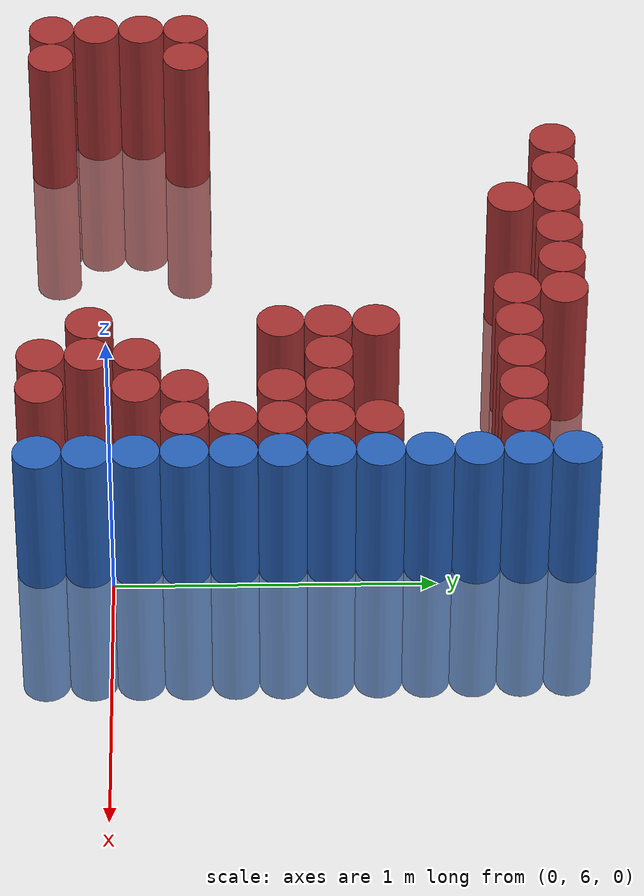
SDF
<sdf version="1.6">
 <world name="default">
  <model name="ground_plane">
   <static>1</static>
   <link name="link">
    <collision name="collision">
     <geometry><plane><normal>0 0 1</normal><size>100 100</size></plane></geometry>
     <surface><friction><ode><mu>100</mu><mu2>50</mu2></ode></friction></surface>
    </collision>
    <visual name="visual">
     <cast_shadows>0</cast_shadows>
     <geometry><plane><normal>0 0 1</normal><size>100 100</size></plane></geometry>
     <material>
      <script><uri>file://media/materials/scripts/gazebo.material</uri><name>Gazebo/Grey</name></script>
     </material>
    </visual>
   </link>
  </model>
  <model name="unit_cylinder_218">
   <static>1</static>
   <pose>-2.175000 5.775000 0.000000 0.000000 0.000000 0.000000</pose>
   <link name="link">
    <inertial>
     <mass>1</mass>
     <inertia><ixx>0.145833</ixx><ixy>0</ixy><ixz>0</ixz><iyy>0.145833</iyy><iyz>0</iyz><izz>0.125</izz></inertia>
    </inertial>
    <collision name="collision">
     <geometry><cylinder><radius>0.075000</radius><length>1</length></cylinder></geometry>
    </collision>
    <visual name="visual">
     <geometry><cylinder><radius>0.075000</radius><length>1</length></cylinder></geometry>
     <material>
      <ambient>0.648000 0.192000 0.192000 1</ambient>
      <diffuse>0.648000 0.192000 0.192000 1</diffuse>
     </material>
     <material>
      <script><name>Gazebo/Grey</name><uri>file://media/materials/scripts/gazebo.material</uri></script>
     </material>
    </visual>
   </link>
  </model>
  <model name="unit_cylinder_219">
   <static>1</static>
   <pose>-2.175000 5.925000 0.000000 0.000000 0.000000 0.000000</pose>
   <link name="link">
    <inertial>
     <mass>1</mass>
     <inertia><ixx>0.145833</ixx><ixy>0</ixy><ixz>0</ixz><iyy>0.145833</iyy><iyz>0</iyz><izz>0.125</izz></inertia>
    </inertial>
    <collision name="collision">
     <geometry><cylinder><radius>0.075000</radius><length>1</length></cylinder></geometry>
    </collision>
    <visual name="visual">
     <geometry><cylinder><radius>0.075000</radius><length>1</length></cylinder></geometry>
     <material>
      <ambient>0.648000 0.192000 0.192000 1</ambient>
      <diffuse>0.648000 0.192000 0.192000 1</diffuse>
     </material>
     <material>
      <script><name>Gazebo/Grey</name><uri>file://media/materials/scripts/gazebo.material</uri></script>
     </material>
    </visual>
   </link>
  </model>
  <model name="unit_cylinder_220">
   <static>1</static>
   <pose>-2.175000 6.075000 0.000000 0.000000 0.000000 0.000000</pose>
   <link name="link">
    <inertial>
     <mass>1</mass>
     <inertia><ixx>0.145833</ixx><ixy>0</ixy><ixz>0</ixz><iyy>0.145833</iyy><iyz>0</iyz><izz>0.125</izz></inertia>
    </inertial>
    <collision name="collision">
     <geometry><cylinder><radius>0.075000</radius><length>1</length></cylinder></geometry>
    </collision>
    <visual name="visual">
     <geometry><cylinder><radius>0.075000</radius><length>1</length></cylinder></geometry>
     <material>
      <ambient>0.648000 0.192000 0.192000 1</ambient>
      <diffuse>0.648000 0.192000 0.192000 1</diffuse>
     </material>
     <material>
      <script><name>Gazebo/Grey</name><uri>file://media/materials/scripts/gazebo.material</uri></script>
     </material>
    </visual>
   </link>
  </model>
  <model name="unit_cylinder_221">
   <static>1</static>
   <pose>-2.175000 6.225000 0.000000 0.000000 0.000000 0.000000</pose>
   <link name="link">
    <inertial>
     <mass>1</mass>
     <inertia><ixx>0.145833</ixx><ixy>0</ixy><ixz>0</ixz><iyy>0.145833</iyy><iyz>0</iyz><izz>0.125</izz></inertia>
    </inertial>
    <collision name="collision">
     <geometry><cylinder><radius>0.075000</radius><length>1</length></cylinder></geometry>
    </collision>
    <visual name="visual">
     <geometry><cylinder><radius>0.075000</radius><length>1</length></cylinder></geometry>
     <material>
      <ambient>0.648000 0.192000 0.192000 1</ambient>
      <diffuse>0.648000 0.192000 0.192000 1</diffuse>
     </material>
     <material>
      <script><name>Gazebo/Grey</name><uri>file://media/materials/scripts/gazebo.material</uri></script>
     </material>
    </visual>
   </link>
  </model>
  <model name="unit_cylinder_223">
   <static>1</static>
   <pose>-2.025000 5.775000 0.000000 0.000000 0.000000 0.000000</pose>
   <link name="link">
    <inertial>
     <mass>1</mass>
     <inertia><ixx>0.145833</ixx><ixy>0</ixy><ixz>0</ixz><iyy>0.145833</iyy><iyz>0</iyz><izz>0.125</izz></inertia>
    </inertial>
    <collision name="collision">
     <geometry><cylinder><radius>0.075000</radius><length>1</length></cylinder></geometry>
    </collision>
    <visual name="visual">
     <geometry><cylinder><radius>0.075000</radius><length>1</length></cylinder></geometry>
     <material>
      <ambient>0.648000 0.192000 0.192000 1</ambient>
      <diffuse>0.648000 0.192000 0.192000 1</diffuse>
     </material>
     <material>
      <script><name>Gazebo/Grey</name><uri>file://media/materials/scripts/gazebo.material</uri></script>
     </material>
    </visual>
   </link>
  </model>
  <model name="unit_cylinder_224">
   <static>1</static>
   <pose>-2.025000 6.225000 0.000000 0.000000 0.000000 0.000000</pose>
   <link name="link">
    <inertial>
     <mass>1</mass>
     <inertia><ixx>0.145833</ixx><ixy>0</ixy><ixz>0</ixz><iyy>0.145833</iyy><iyz>0</iyz><izz>0.125</izz></inertia>
    </inertial>
    <collision name="collision">
     <geometry><cylinder><radius>0.075000</radius><length>1</length></cylinder></geometry>
    </collision>
    <visual name="visual">
     <geometry><cylinder><radius>0.075000</radius><length>1</length></cylinder></geometry>
     <material>
      <ambient>0.648000 0.192000 0.192000 1</ambient>
      <diffuse>0.648000 0.192000 0.192000 1</diffuse>
     </material>
     <material>
      <script><name>Gazebo/Grey</name><uri>file://media/materials/scripts/gazebo.material</uri></script>
     </material>
    </visual>
   </link>
  </model>
  <model name="unit_cylinder_225">
   <static>1</static>
   <pose>-1.575000 7.425000 0.000000 0.000000 0.000000 0.000000</pose>
   <link name="link">
    <inertial>
     <mass>1</mass>
     <inertia><ixx>0.145833</ixx><ixy>0</ixy><ixz>0</ixz><iyy>0.145833</iyy><iyz>0</iyz><izz>0.125</izz></inertia>
    </inertial>
    <collision name="collision">
     <geometry><cylinder><radius>0.075000</radius><length>1</length></cylinder></geometry>
    </collision>
    <visual name="visual">
     <geometry><cylinder><radius>0.075000</radius><length>1</length></cylinder></geometry>
     <material>
      <ambient>0.648000 0.192000 0.192000 1</ambient>
      <diffuse>0.648000 0.192000 0.192000 1</diffuse>
     </material>
     <material>
      <script><name>Gazebo/Grey</name><uri>file://media/materials/scripts/gazebo.material</uri></script>
     </material>
    </visual>
   </link>
  </model>
  <model name="unit_cylinder_229">
   <static>1</static>
   <pose>-1.425000 7.425000 0.000000 0.000000 0.000000 0.000000</pose>
   <link name="link">
    <inertial>
     <mass>1</mass>
     <inertia><ixx>0.145833</ixx><ixy>0</ixy><ixz>0</ixz><iyy>0.145833</iyy><iyz>0</iyz><izz>0.125</izz></inertia>
    </inertial>
    <collision name="collision">
     <geometry><cylinder><radius>0.075000</radius><length>1</length></cylinder></geometry>
    </collision>
    <visual name="visual">
     <geometry><cylinder><radius>0.075000</radius><length>1</length></cylinder></geometry>
     <material>
      <ambient>0.648000 0.192000 0.192000 1</ambient>
      <diffuse>0.648000 0.192000 0.192000 1</diffuse>
     </material>
     <material>
      <script><name>Gazebo/Grey</name><uri>file://media/materials/scripts/gazebo.material</uri></script>
     </material>
    </visual>
   </link>
  </model>
  <model name="unit_cylinder_237">
   <static>1</static>
   <pose>-1.275000 7.275000 0.000000 0.000000 0.000000 0.000000</pose>
   <link name="link">
    <inertial>
     <mass>1</mass>
     <inertia><ixx>0.145833</ixx><ixy>0</ixy><ixz>0</ixz><iyy>0.145833</iyy><iyz>0</iyz><izz>0.125</izz></inertia>
    </inertial>
    <collision name="collision">
     <geometry><cylinder><radius>0.075000</radius><length>1</length></cylinder></geometry>
    </collision>
    <visual name="visual">
     <geometry><cylinder><radius>0.075000</radius><length>1</length></cylinder></geometry>
     <material>
      <ambient>0.648000 0.192000 0.192000 1</ambient>
      <diffuse>0.648000 0.192000 0.192000 1</diffuse>
     </material>
     <material>
      <script><name>Gazebo/Grey</name><uri>file://media/materials/scripts/gazebo.material</uri></script>
     </material>
    </visual>
   </link>
  </model>
  <model name="unit_cylinder_238">
   <static>1</static>
   <pose>-1.275000 7.425000 0.000000 0.000000 0.000000 0.000000</pose>
   <link name="link">
    <inertial>
     <mass>1</mass>
     <inertia><ixx>0.145833</ixx><ixy>0</ixy><ixz>0</ixz><iyy>0.145833</iyy><iyz>0</iyz><izz>0.125</izz></inertia>
    </inertial>
    <collision name="collision">
     <geometry><cylinder><radius>0.075000</radius><length>1</length></cylinder></geometry>
    </collision>
    <visual name="visual">
     <geometry><cylinder><radius>0.075000</radius><length>1</length></cylinder></geometry>
     <material>
      <ambient>0.648000 0.192000 0.192000 1</ambient>
      <diffuse>0.648000 0.192000 0.192000 1</diffuse>
     </material>
     <material>
      <script><name>Gazebo/Grey</name><uri>file://media/materials/scripts/gazebo.material</uri></script>
     </material>
    </visual>
   </link>
  </model>
  <model name="unit_cylinder_243">
   <static>1</static>
   <pose>-1.125000 7.425000 0.000000 0.000000 0.000000 0.000000</pose>
   <link name="link">
    <inertial>
     <mass>1</mass>
     <inertia><ixx>0.145833</ixx><ixy>0</ixy><ixz>0</ixz><iyy>0.145833</iyy><iyz>0</iyz><izz>0.125</izz></inertia>
    </inertial>
    <collision name="collision">
     <geometry><cylinder><radius>0.075000</radius><length>1</length></cylinder></geometry>
    </collision>
    <visual name="visual">
     <geometry><cylinder><radius>0.075000</radius><length>1</length></cylinder></geometry>
     <material>
      <ambient>0.648000 0.192000 0.192000 1</ambient>
      <diffuse>0.648000 0.192000 0.192000 1</diffuse>
     </material>
     <material>
      <script><name>Gazebo/Grey</name><uri>file://media/materials/scripts/gazebo.material</uri></script>
     </material>
    </visual>
   </link>
  </model>
  <model name="unit_cylinder_249">
   <static>1</static>
   <pose>-0.975000 7.425000 0.000000 0.000000 0.000000 0.000000</pose>
   <link name="link">
    <inertial>
     <mass>1</mass>
     <inertia><ixx>0.145833</ixx><ixy>0</ixy><ixz>0</ixz><iyy>0.145833</iyy><iyz>0</iyz><izz>0.125</izz></inertia>
    </inertial>
    <collision name="collision">
     <geometry><cylinder><radius>0.075000</radius><length>1</length></cylinder></geometry>
    </collision>
    <visual name="visual">
     <geometry><cylinder><radius>0.075000</radius><length>1</length></cylinder></geometry>
     <material>
      <ambient>0.648000 0.192000 0.192000 1</ambient>
      <diffuse>0.648000 0.192000 0.192000 1</diffuse>
     </material>
     <material>
      <script><name>Gazebo/Grey</name><uri>file://media/materials/scripts/gazebo.material</uri></script>
     </material>
    </visual>
   </link>
  </model>
  <model name="unit_cylinder_255">
   <static>1</static>
   <pose>-0.825000 7.275000 0.000000 0.000000 0.000000 0.000000</pose>
   <link name="link">
    <inertial>
     <mass>1</mass>
     <inertia><ixx>0.145833</ixx><ixy>0</ixy><ixz>0</ixz><iyy>0.145833</iyy><iyz>0</iyz><izz>0.125</izz></inertia>
    </inertial>
    <collision name="collision">
     <geometry><cylinder><radius>0.075000</radius><length>1</length></cylinder></geometry>
    </collision>
    <visual name="visual">
     <geometry><cylinder><radius>0.075000</radius><length>1</length></cylinder></geometry>
     <material>
      <ambient>0.648000 0.192000 0.192000 1</ambient>
      <diffuse>0.648000 0.192000 0.192000 1</diffuse>
     </material>
     <material>
      <script><name>Gazebo/Grey</name><uri>file://media/materials/scripts/gazebo.material</uri></script>
     </material>
    </visual>
   </link>
  </model>
  <model name="unit_cylinder_256">
   <static>1</static>
   <pose>-0.825000 7.425000 0.000000 0.000000 0.000000 0.000000</pose>
   <link name="link">
    <inertial>
     <mass>1</mass>
     <inertia><ixx>0.145833</ixx><ixy>0</ixy><ixz>0</ixz><iyy>0.145833</iyy><iyz>0</iyz><izz>0.125</izz></inertia>
    </inertial>
    <collision name="collision">
     <geometry><cylinder><radius>0.075000</radius><length>1</length></cylinder></geometry>
    </collision>
    <visual name="visual">
     <geometry><cylinder><radius>0.075000</radius><length>1</length></cylinder></geometry>
     <material>
      <ambient>0.648000 0.192000 0.192000 1</ambient>
      <diffuse>0.648000 0.192000 0.192000 1</diffuse>
     </material>
     <material>
      <script><name>Gazebo/Grey</name><uri>file://media/materials/scripts/gazebo.material</uri></script>
     </material>
    </visual>
   </link>
  </model>
  <model name="unit_cylinder_260">
   <static>1</static>
   <pose>-0.675000 5.925000 0.000000 0.000000 0.000000 0.000000</pose>
   <link name="link">
    <inertial>
     <mass>1</mass>
     <inertia><ixx>0.145833</ixx><ixy>0</ixy><ixz>0</ixz><iyy>0.145833</iyy><iyz>0</iyz><izz>0.125</izz></inertia>
    </inertial>
    <collision name="collision">
     <geometry><cylinder><radius>0.075000</radius><length>1</length></cylinder></geometry>
    </collision>
    <visual name="visual">
     <geometry><cylinder><radius>0.075000</radius><length>1</length></cylinder></geometry>
     <material>
      <ambient>0.648000 0.192000 0.192000 1</ambient>
      <diffuse>0.648000 0.192000 0.192000 1</diffuse>
     </material>
     <material>
      <script><name>Gazebo/Grey</name><uri>file://media/materials/scripts/gazebo.material</uri></script>
     </material>
    </visual>
   </link>
  </model>
  <model name="unit_cylinder_261">
   <static>1</static>
   <pose>-0.675000 6.525000 0.000000 0.000000 0.000000 0.000000</pose>
   <link name="link">
    <inertial>
     <mass>1</mass>
     <inertia><ixx>0.145833</ixx><ixy>0</ixy><ixz>0</ixz><iyy>0.145833</iyy><iyz>0</iyz><izz>0.125</izz></inertia>
    </inertial>
    <collision name="collision">
     <geometry><cylinder><radius>0.075000</radius><length>1</length></cylinder></geometry>
    </collision>
    <visual name="visual">
     <geometry><cylinder><radius>0.075000</radius><length>1</length></cylinder></geometry>
     <material>
      <ambient>0.648000 0.192000 0.192000 1</ambient>
      <diffuse>0.648000 0.192000 0.192000 1</diffuse>
     </material>
     <material>
      <script><name>Gazebo/Grey</name><uri>file://media/materials/scripts/gazebo.material</uri></script>
     </material>
    </visual>
   </link>
  </model>
  <model name="unit_cylinder_262">
   <static>1</static>
   <pose>-0.675000 6.675000 0.000000 0.000000 0.000000 0.000000</pose>
   <link name="link">
    <inertial>
     <mass>1</mass>
     <inertia><ixx>0.145833</ixx><ixy>0</ixy><ixz>0</ixz><iyy>0.145833</iyy><iyz>0</iyz><izz>0.125</izz></inertia>
    </inertial>
    <collision name="collision">
     <geometry><cylinder><radius>0.075000</radius><length>1</length></cylinder></geometry>
    </collision>
    <visual name="visual">
     <geometry><cylinder><radius>0.075000</radius><length>1</length></cylinder></geometry>
     <material>
      <ambient>0.648000 0.192000 0.192000 1</ambient>
      <diffuse>0.648000 0.192000 0.192000 1</diffuse>
     </material>
     <material>
      <script><name>Gazebo/Grey</name><uri>file://media/materials/scripts/gazebo.material</uri></script>
     </material>
    </visual>
   </link>
  </model>
  <model name="unit_cylinder_263">
   <static>1</static>
   <pose>-0.675000 6.825000 0.000000 0.000000 0.000000 0.000000</pose>
   <link name="link">
    <inertial>
     <mass>1</mass>
     <inertia><ixx>0.145833</ixx><ixy>0</ixy><ixz>0</ixz><iyy>0.145833</iyy><iyz>0</iyz><izz>0.125</izz></inertia>
    </inertial>
    <collision name="collision">
     <geometry><cylinder><radius>0.075000</radius><length>1</length></cylinder></geometry>
    </collision>
    <visual name="visual">
     <geometry><cylinder><radius>0.075000</radius><length>1</length></cylinder></geometry>
     <material>
      <ambient>0.648000 0.192000 0.192000 1</ambient>
      <diffuse>0.648000 0.192000 0.192000 1</diffuse>
     </material>
     <material>
      <script><name>Gazebo/Grey</name><uri>file://media/materials/scripts/gazebo.material</uri></script>
     </material>
    </visual>
   </link>
  </model>
  <model name="unit_cylinder_264">
   <static>1</static>
   <pose>-0.675000 7.275000 0.000000 0.000000 0.000000 0.000000</pose>
   <link name="link">
    <inertial>
     <mass>1</mass>
     <inertia><ixx>0.145833</ixx><ixy>0</ixy><ixz>0</ixz><iyy>0.145833</iyy><iyz>0</iyz><izz>0.125</izz></inertia>
    </inertial>
    <collision name="collision">
     <geometry><cylinder><radius>0.075000</radius><length>1</length></cylinder></geometry>
    </collision>
    <visual name="visual">
     <geometry><cylinder><radius>0.075000</radius><length>1</length></cylinder></geometry>
     <material>
      <ambient>0.648000 0.192000 0.192000 1</ambient>
      <diffuse>0.648000 0.192000 0.192000 1</diffuse>
     </material>
     <material>
      <script><name>Gazebo/Grey</name><uri>file://media/materials/scripts/gazebo.material</uri></script>
     </material>
    </visual>
   </link>
  </model>
  <model name="unit_cylinder_266">
   <static>1</static>
   <pose>-0.525000 5.775000 0.000000 0.000000 0.000000 0.000000</pose>
   <link name="link">
    <inertial>
     <mass>1</mass>
     <inertia><ixx>0.145833</ixx><ixy>0</ixy><ixz>0</ixz><iyy>0.145833</iyy><iyz>0</iyz><izz>0.125</izz></inertia>
    </inertial>
    <collision name="collision">
     <geometry><cylinder><radius>0.075000</radius><length>1</length></cylinder></geometry>
    </collision>
    <visual name="visual">
     <geometry><cylinder><radius>0.075000</radius><length>1</length></cylinder></geometry>
     <material>
      <ambient>0.648000 0.192000 0.192000 1</ambient>
      <diffuse>0.648000 0.192000 0.192000 1</diffuse>
     </material>
     <material>
      <script><name>Gazebo/Grey</name><uri>file://media/materials/scripts/gazebo.material</uri></script>
     </material>
    </visual>
   </link>
  </model>
  <model name="unit_cylinder_267">
   <static>1</static>
   <pose>-0.525000 5.925000 0.000000 0.000000 0.000000 0.000000</pose>
   <link name="link">
    <inertial>
     <mass>1</mass>
     <inertia><ixx>0.145833</ixx><ixy>0</ixy><ixz>0</ixz><iyy>0.145833</iyy><iyz>0</iyz><izz>0.125</izz></inertia>
    </inertial>
    <collision name="collision">
     <geometry><cylinder><radius>0.075000</radius><length>1</length></cylinder></geometry>
    </collision>
    <visual name="visual">
     <geometry><cylinder><radius>0.075000</radius><length>1</length></cylinder></geometry>
     <material>
      <ambient>0.648000 0.192000 0.192000 1</ambient>
      <diffuse>0.648000 0.192000 0.192000 1</diffuse>
     </material>
     <material>
      <script><name>Gazebo/Grey</name><uri>file://media/materials/scripts/gazebo.material</uri></script>
     </material>
    </visual>
   </link>
  </model>
  <model name="unit_cylinder_268">
   <static>1</static>
   <pose>-0.525000 6.075000 0.000000 0.000000 0.000000 0.000000</pose>
   <link name="link">
    <inertial>
     <mass>1</mass>
     <inertia><ixx>0.145833</ixx><ixy>0</ixy><ixz>0</ixz><iyy>0.145833</iyy><iyz>0</iyz><izz>0.125</izz></inertia>
    </inertial>
    <collision name="collision">
     <geometry><cylinder><radius>0.075000</radius><length>1</length></cylinder></geometry>
    </collision>
    <visual name="visual">
     <geometry><cylinder><radius>0.075000</radius><length>1</length></cylinder></geometry>
     <material>
      <ambient>0.648000 0.192000 0.192000 1</ambient>
      <diffuse>0.648000 0.192000 0.192000 1</diffuse>
     </material>
     <material>
      <script><name>Gazebo/Grey</name><uri>file://media/materials/scripts/gazebo.material</uri></script>
     </material>
    </visual>
   </link>
  </model>
  <model name="unit_cylinder_269">
   <static>1</static>
   <pose>-0.525000 6.675000 0.000000 0.000000 0.000000 0.000000</pose>
   <link name="link">
    <inertial>
     <mass>1</mass>
     <inertia><ixx>0.145833</ixx><ixy>0</ixy><ixz>0</ixz><iyy>0.145833</iyy><iyz>0</iyz><izz>0.125</izz></inertia>
    </inertial>
    <collision name="collision">
     <geometry><cylinder><radius>0.075000</radius><length>1</length></cylinder></geometry>
    </collision>
    <visual name="visual">
     <geometry><cylinder><radius>0.075000</radius><length>1</length></cylinder></geometry>
     <material>
      <ambient>0.648000 0.192000 0.192000 1</ambient>
      <diffuse>0.648000 0.192000 0.192000 1</diffuse>
     </material>
     <material>
      <script><name>Gazebo/Grey</name><uri>file://media/materials/scripts/gazebo.material</uri></script>
     </material>
    </visual>
   </link>
  </model>
  <model name="unit_cylinder_270">
   <static>1</static>
   <pose>-0.525000 7.275000 0.000000 0.000000 0.000000 0.000000</pose>
   <link name="link">
    <inertial>
     <mass>1</mass>
     <inertia><ixx>0.145833</ixx><ixy>0</ixy><ixz>0</ixz><iyy>0.145833</iyy><iyz>0</iyz><izz>0.125</izz></inertia>
    </inertial>
    <collision name="collision">
     <geometry><cylinder><radius>0.075000</radius><length>1</length></cylinder></geometry>
    </collision>
    <visual name="visual">
     <geometry><cylinder><radius>0.075000</radius><length>1</length></cylinder></geometry>
     <material>
      <ambient>0.648000 0.192000 0.192000 1</ambient>
      <diffuse>0.648000 0.192000 0.192000 1</diffuse>
     </material>
     <material>
      <script><name>Gazebo/Grey</name><uri>file://media/materials/scripts/gazebo.material</uri></script>
     </material>
    </visual>
   </link>
  </model>
  <model name="unit_cylinder_275">
   <static>1</static>
   <pose>-0.375000 5.775000 0.000000 0.000000 0.000000 0.000000</pose>
   <link name="link">
    <inertial>
     <mass>1</mass>
     <inertia><ixx>0.145833</ixx><ixy>0</ixy><ixz>0</ixz><iyy>0.145833</iyy><iyz>0</iyz><izz>0.125</izz></inertia>
    </inertial>
    <collision name="collision">
     <geometry><cylinder><radius>0.075000</radius><length>1</length></cylinder></geometry>
    </collision>
    <visual name="visual">
     <geometry><cylinder><radius>0.075000</radius><length>1</length></cylinder></geometry>
     <material>
      <ambient>0.648000 0.192000 0.192000 1</ambient>
      <diffuse>0.648000 0.192000 0.192000 1</diffuse>
     </material>
     <material>
      <script><name>Gazebo/Grey</name><uri>file://media/materials/scripts/gazebo.material</uri></script>
     </material>
    </visual>
   </link>
  </model>
  <model name="unit_cylinder_276">
   <static>1</static>
   <pose>-0.375000 6.075000 0.000000 0.000000 0.000000 0.000000</pose>
   <link name="link">
    <inertial>
     <mass>1</mass>
     <inertia><ixx>0.145833</ixx><ixy>0</ixy><ixz>0</ixz><iyy>0.145833</iyy><iyz>0</iyz><izz>0.125</izz></inertia>
    </inertial>
    <collision name="collision">
     <geometry><cylinder><radius>0.075000</radius><length>1</length></cylinder></geometry>
    </collision>
    <visual name="visual">
     <geometry><cylinder><radius>0.075000</radius><length>1</length></cylinder></geometry>
     <material>
      <ambient>0.648000 0.192000 0.192000 1</ambient>
      <diffuse>0.648000 0.192000 0.192000 1</diffuse>
     </material>
     <material>
      <script><name>Gazebo/Grey</name><uri>file://media/materials/scripts/gazebo.material</uri></script>
     </material>
    </visual>
   </link>
  </model>
  <model name="unit_cylinder_277">
   <static>1</static>
   <pose>-0.375000 6.225000 0.000000 0.000000 0.000000 0.000000</pose>
   <link name="link">
    <inertial>
     <mass>1</mass>
     <inertia><ixx>0.145833</ixx><ixy>0</ixy><ixz>0</ixz><iyy>0.145833</iyy><iyz>0</iyz><izz>0.125</izz></inertia>
    </inertial>
    <collision name="collision">
     <geometry><cylinder><radius>0.075000</radius><length>1</length></cylinder></geometry>
    </collision>
    <visual name="visual">
     <geometry><cylinder><radius>0.075000</radius><length>1</length></cylinder></geometry>
     <material>
      <ambient>0.648000 0.192000 0.192000 1</ambient>
      <diffuse>0.648000 0.192000 0.192000 1</diffuse>
     </material>
     <material>
      <script><name>Gazebo/Grey</name><uri>file://media/materials/scripts/gazebo.material</uri></script>
     </material>
    </visual>
   </link>
  </model>
  <model name="unit_cylinder_278">
   <static>1</static>
   <pose>-0.375000 6.525000 0.000000 0.000000 0.000000 0.000000</pose>
   <link name="link">
    <inertial>
     <mass>1</mass>
     <inertia><ixx>0.145833</ixx><ixy>0</ixy><ixz>0</ixz><iyy>0.145833</iyy><iyz>0</iyz><izz>0.125</izz></inertia>
    </inertial>
    <collision name="collision">
     <geometry><cylinder><radius>0.075000</radius><length>1</length></cylinder></geometry>
    </collision>
    <visual name="visual">
     <geometry><cylinder><radius>0.075000</radius><length>1</length></cylinder></geometry>
     <material>
      <ambient>0.648000 0.192000 0.192000 1</ambient>
      <diffuse>0.648000 0.192000 0.192000 1</diffuse>
     </material>
     <material>
      <script><name>Gazebo/Grey</name><uri>file://media/materials/scripts/gazebo.material</uri></script>
     </material>
    </visual>
   </link>
  </model>
  <model name="unit_cylinder_279">
   <static>1</static>
   <pose>-0.375000 6.675000 0.000000 0.000000 0.000000 0.000000</pose>
   <link name="link">
    <inertial>
     <mass>1</mass>
     <inertia><ixx>0.145833</ixx><ixy>0</ixy><ixz>0</ixz><iyy>0.145833</iyy><iyz>0</iyz><izz>0.125</izz></inertia>
    </inertial>
    <collision name="collision">
     <geometry><cylinder><radius>0.075000</radius><length>1</length></cylinder></geometry>
    </collision>
    <visual name="visual">
     <geometry><cylinder><radius>0.075000</radius><length>1</length></cylinder></geometry>
     <material>
      <ambient>0.648000 0.192000 0.192000 1</ambient>
      <diffuse>0.648000 0.192000 0.192000 1</diffuse>
     </material>
     <material>
      <script><name>Gazebo/Grey</name><uri>file://media/materials/scripts/gazebo.material</uri></script>
     </material>
    </visual>
   </link>
  </model>
  <model name="unit_cylinder_280">
   <static>1</static>
   <pose>-0.375000 7.275000 0.000000 0.000000 0.000000 0.000000</pose>
   <link name="link">
    <inertial>
     <mass>1</mass>
     <inertia><ixx>0.145833</ixx><ixy>0</ixy><ixz>0</ixz><iyy>0.145833</iyy><iyz>0</iyz><izz>0.125</izz></inertia>
    </inertial>
    <collision name="collision">
     <geometry><cylinder><radius>0.075000</radius><length>1</length></cylinder></geometry>
    </collision>
    <visual name="visual">
     <geometry><cylinder><radius>0.075000</radius><length>1</length></cylinder></geometry>
     <material>
      <ambient>0.648000 0.192000 0.192000 1</ambient>
      <diffuse>0.648000 0.192000 0.192000 1</diffuse>
     </material>
     <material>
      <script><name>Gazebo/Grey</name><uri>file://media/materials/scripts/gazebo.material</uri></script>
     </material>
    </visual>
   </link>
  </model>
  <model name="unit_cylinder_289">
   <static>1</static>
   <pose>-0.225000 6.225000 0.000000 0.000000 0.000000 0.000000</pose>
   <link name="link">
    <inertial>
     <mass>1</mass>
     <inertia><ixx>0.145833</ixx><ixy>0</ixy><ixz>0</ixz><iyy>0.145833</iyy><iyz>0</iyz><izz>0.125</izz></inertia>
    </inertial>
    <collision name="collision">
     <geometry><cylinder><radius>0.075000</radius><length>1</length></cylinder></geometry>
    </collision>
    <visual name="visual">
     <geometry><cylinder><radius>0.075000</radius><length>1</length></cylinder></geometry>
     <material>
      <ambient>0.648000 0.192000 0.192000 1</ambient>
      <diffuse>0.648000 0.192000 0.192000 1</diffuse>
     </material>
     <material>
      <script><name>Gazebo/Grey</name><uri>file://media/materials/scripts/gazebo.material</uri></script>
     </material>
    </visual>
   </link>
  </model>
  <model name="unit_cylinder_290">
   <static>1</static>
   <pose>-0.225000 6.375000 0.000000 0.000000 0.000000 0.000000</pose>
   <link name="link">
    <inertial>
     <mass>1</mass>
     <inertia><ixx>0.145833</ixx><ixy>0</ixy><ixz>0</ixz><iyy>0.145833</iyy><iyz>0</iyz><izz>0.125</izz></inertia>
    </inertial>
    <collision name="collision">
     <geometry><cylinder><radius>0.075000</radius><length>1</length></cylinder></geometry>
    </collision>
    <visual name="visual">
     <geometry><cylinder><radius>0.075000</radius><length>1</length></cylinder></geometry>
     <material>
      <ambient>0.648000 0.192000 0.192000 1</ambient>
      <diffuse>0.648000 0.192000 0.192000 1</diffuse>
     </material>
     <material>
      <script><name>Gazebo/Grey</name><uri>file://media/materials/scripts/gazebo.material</uri></script>
     </material>
    </visual>
   </link>
  </model>
  <model name="unit_cylinder_291">
   <static>1</static>
   <pose>-0.225000 6.525000 0.000000 0.000000 0.000000 0.000000</pose>
   <link name="link">
    <inertial>
     <mass>1</mass>
     <inertia><ixx>0.145833</ixx><ixy>0</ixy><ixz>0</ixz><iyy>0.145833</iyy><iyz>0</iyz><izz>0.125</izz></inertia>
    </inertial>
    <collision name="collision">
     <geometry><cylinder><radius>0.075000</radius><length>1</length></cylinder></geometry>
    </collision>
    <visual name="visual">
     <geometry><cylinder><radius>0.075000</radius><length>1</length></cylinder></geometry>
     <material>
      <ambient>0.648000 0.192000 0.192000 1</ambient>
      <diffuse>0.648000 0.192000 0.192000 1</diffuse>
     </material>
     <material>
      <script><name>Gazebo/Grey</name><uri>file://media/materials/scripts/gazebo.material</uri></script>
     </material>
    </visual>
   </link>
  </model>
  <model name="unit_cylinder_292">
   <static>1</static>
   <pose>-0.225000 6.675000 0.000000 0.000000 0.000000 0.000000</pose>
   <link name="link">
    <inertial>
     <mass>1</mass>
     <inertia><ixx>0.145833</ixx><ixy>0</ixy><ixz>0</ixz><iyy>0.145833</iyy><iyz>0</iyz><izz>0.125</izz></inertia>
    </inertial>
    <collision name="collision">
     <geometry><cylinder><radius>0.075000</radius><length>1</length></cylinder></geometry>
    </collision>
    <visual name="visual">
     <geometry><cylinder><radius>0.075000</radius><length>1</length></cylinder></geometry>
     <material>
      <ambient>0.648000 0.192000 0.192000 1</ambient>
      <diffuse>0.648000 0.192000 0.192000 1</diffuse>
     </material>
     <material>
      <script><name>Gazebo/Grey</name><uri>file://media/materials/scripts/gazebo.material</uri></script>
     </material>
    </visual>
   </link>
  </model>
  <model name="unit_cylinder_293">
   <static>1</static>
   <pose>-0.225000 6.825000 0.000000 0.000000 0.000000 0.000000</pose>
   <link name="link">
    <inertial>
     <mass>1</mass>
     <inertia><ixx>0.145833</ixx><ixy>0</ixy><ixz>0</ixz><iyy>0.145833</iyy><iyz>0</iyz><izz>0.125</izz></inertia>
    </inertial>
    <collision name="collision">
     <geometry><cylinder><radius>0.075000</radius><length>1</length></cylinder></geometry>
    </collision>
    <visual name="visual">
     <geometry><cylinder><radius>0.075000</radius><length>1</length></cylinder></geometry>
     <material>
      <ambient>0.648000 0.192000 0.192000 1</ambient>
      <diffuse>0.648000 0.192000 0.192000 1</diffuse>
     </material>
     <material>
      <script><name>Gazebo/Grey</name><uri>file://media/materials/scripts/gazebo.material</uri></script>
     </material>
    </visual>
   </link>
  </model>
  <model name="unit_cylinder_294">
   <static>1</static>
   <pose>-0.225000 7.275000 0.000000 0.000000 0.000000 0.000000</pose>
   <link name="link">
    <inertial>
     <mass>1</mass>
     <inertia><ixx>0.145833</ixx><ixy>0</ixy><ixz>0</ixz><iyy>0.145833</iyy><iyz>0</iyz><izz>0.125</izz></inertia>
    </inertial>
    <collision name="collision">
     <geometry><cylinder><radius>0.075000</radius><length>1</length></cylinder></geometry>
    </collision>
    <visual name="visual">
     <geometry><cylinder><radius>0.075000</radius><length>1</length></cylinder></geometry>
     <material>
      <ambient>0.648000 0.192000 0.192000 1</ambient>
      <diffuse>0.648000 0.192000 0.192000 1</diffuse>
     </material>
     <material>
      <script><name>Gazebo/Grey</name><uri>file://media/materials/scripts/gazebo.material</uri></script>
     </material>
    </visual>
   </link>
  </model>
  <model name="unit_cylinder_309">
   <static>1</static>
   <pose>-0.075000 5.775000 0.000000 0.000000 0.000000 0.000000</pose>
   <link name="link">
    <inertial>
     <mass>1</mass>
     <inertia><ixx>0.145833</ixx><ixy>0</ixy><ixz>0</ixz><iyy>0.145833</iyy><iyz>0</iyz><izz>0.125</izz></inertia>
    </inertial>
    <collision name="collision">
     <geometry><cylinder><radius>0.075000</radius><length>1</length></cylinder></geometry>
    </collision>
    <visual name="visual">
     <geometry><cylinder><radius>0.075000</radius><length>1</length></cylinder></geometry>
     <material>
      <ambient>0.152000 0.379000 0.720000 1</ambient>
      <diffuse>0.152000 0.379000 0.720000 1</diffuse>
     </material>
     <material>
      <script><name>Gazebo/Grey</name><uri>file://media/materials/scripts/gazebo.material</uri></script>
     </material>
    </visual>
   </link>
  </model>
  <model name="unit_cylinder_310">
   <static>1</static>
   <pose>-0.075000 5.925000 0.000000 0.000000 0.000000 0.000000</pose>
   <link name="link">
    <inertial>
     <mass>1</mass>
     <inertia><ixx>0.145833</ixx><ixy>0</ixy><ixz>0</ixz><iyy>0.145833</iyy><iyz>0</iyz><izz>0.125</izz></inertia>
    </inertial>
    <collision name="collision">
     <geometry><cylinder><radius>0.075000</radius><length>1</length></cylinder></geometry>
    </collision>
    <visual name="visual">
     <geometry><cylinder><radius>0.075000</radius><length>1</length></cylinder></geometry>
     <material>
      <ambient>0.152000 0.379000 0.720000 1</ambient>
      <diffuse>0.152000 0.379000 0.720000 1</diffuse>
     </material>
     <material>
      <script><name>Gazebo/Grey</name><uri>file://media/materials/scripts/gazebo.material</uri></script>
     </material>
    </visual>
   </link>
  </model>
  <model name="unit_cylinder_311">
   <static>1</static>
   <pose>-0.075000 6.075000 0.000000 0.000000 0.000000 0.000000</pose>
   <link name="link">
    <inertial>
     <mass>1</mass>
     <inertia><ixx>0.145833</ixx><ixy>0</ixy><ixz>0</ixz><iyy>0.145833</iyy><iyz>0</iyz><izz>0.125</izz></inertia>
    </inertial>
    <collision name="collision">
     <geometry><cylinder><radius>0.075000</radius><length>1</length></cylinder></geometry>
    </collision>
    <visual name="visual">
     <geometry><cylinder><radius>0.075000</radius><length>1</length></cylinder></geometry>
     <material>
      <ambient>0.152000 0.379000 0.720000 1</ambient>
      <diffuse>0.152000 0.379000 0.720000 1</diffuse>
     </material>
     <material>
      <script><name>Gazebo/Grey</name><uri>file://media/materials/scripts/gazebo.material</uri></script>
     </material>
    </visual>
   </link>
  </model>
  <model name="unit_cylinder_312">
   <static>1</static>
   <pose>-0.075000 6.225000 0.000000 0.000000 0.000000 0.000000</pose>
   <link name="link">
    <inertial>
     <mass>1</mass>
     <inertia><ixx>0.145833</ixx><ixy>0</ixy><ixz>0</ixz><iyy>0.145833</iyy><iyz>0</iyz><izz>0.125</izz></inertia>
    </inertial>
    <collision name="collision">
     <geometry><cylinder><radius>0.075000</radius><length>1</length></cylinder></geometry>
    </collision>
    <visual name="visual">
     <geometry><cylinder><radius>0.075000</radius><length>1</length></cylinder></geometry>
     <material>
      <ambient>0.152000 0.379000 0.720000 1</ambient>
      <diffuse>0.152000 0.379000 0.720000 1</diffuse>
     </material>
     <material>
      <script><name>Gazebo/Grey</name><uri>file://media/materials/scripts/gazebo.material</uri></script>
     </material>
    </visual>
   </link>
  </model>
  <model name="unit_cylinder_313">
   <static>1</static>
   <pose>-0.075000 6.375000 0.000000 0.000000 0.000000 0.000000</pose>
   <link name="link">
    <inertial>
     <mass>1</mass>
     <inertia><ixx>0.145833</ixx><ixy>0</ixy><ixz>0</ixz><iyy>0.145833</iyy><iyz>0</iyz><izz>0.125</izz></inertia>
    </inertial>
    <collision name="collision">
     <geometry><cylinder><radius>0.075000</radius><length>1</length></cylinder></geometry>
    </collision>
    <visual name="visual">
     <geometry><cylinder><radius>0.075000</radius><length>1</length></cylinder></geometry>
     <material>
      <ambient>0.152000 0.379000 0.720000 1</ambient>
      <diffuse>0.152000 0.379000 0.720000 1</diffuse>
     </material>
     <material>
      <script><name>Gazebo/Grey</name><uri>file://media/materials/scripts/gazebo.material</uri></script>
     </material>
    </visual>
   </link>
  </model>
  <model name="unit_cylinder_314">
   <static>1</static>
   <pose>-0.075000 6.525000 0.000000 0.000000 0.000000 0.000000</pose>
   <link name="link">
    <inertial>
     <mass>1</mass>
     <inertia><ixx>0.145833</ixx><ixy>0</ixy><ixz>0</ixz><iyy>0.145833</iyy><iyz>0</iyz><izz>0.125</izz></inertia>
    </inertial>
    <collision name="collision">
     <geometry><cylinder><radius>0.075000</radius><length>1</length></cylinder></geometry>
    </collision>
    <visual name="visual">
     <geometry><cylinder><radius>0.075000</radius><length>1</length></cylinder></geometry>
     <material>
      <ambient>0.152000 0.379000 0.720000 1</ambient>
      <diffuse>0.152000 0.379000 0.720000 1</diffuse>
     </material>
     <material>
      <script><name>Gazebo/Grey</name><uri>file://media/materials/scripts/gazebo.material</uri></script>
     </material>
    </visual>
   </link>
  </model>
  <model name="unit_cylinder_315">
   <static>1</static>
   <pose>-0.075000 6.675000 0.000000 0.000000 0.000000 0.000000</pose>
   <link name="link">
    <inertial>
     <mass>1</mass>
     <inertia><ixx>0.145833</ixx><ixy>0</ixy><ixz>0</ixz><iyy>0.145833</iyy><iyz>0</iyz><izz>0.125</izz></inertia>
    </inertial>
    <collision name="collision">
     <geometry><cylinder><radius>0.075000</radius><length>1</length></cylinder></geometry>
    </collision>
    <visual name="visual">
     <geometry><cylinder><radius>0.075000</radius><length>1</length></cylinder></geometry>
     <material>
      <ambient>0.152000 0.379000 0.720000 1</ambient>
      <diffuse>0.152000 0.379000 0.720000 1</diffuse>
     </material>
     <material>
      <script><name>Gazebo/Grey</name><uri>file://media/materials/scripts/gazebo.material</uri></script>
     </material>
    </visual>
   </link>
  </model>
  <model name="unit_cylinder_316">
   <static>1</static>
   <pose>-0.075000 6.825000 0.000000 0.000000 0.000000 0.000000</pose>
   <link name="link">
    <inertial>
     <mass>1</mass>
     <inertia><ixx>0.145833</ixx><ixy>0</ixy><ixz>0</ixz><iyy>0.145833</iyy><iyz>0</iyz><izz>0.125</izz></inertia>
    </inertial>
    <collision name="collision">
     <geometry><cylinder><radius>0.075000</radius><length>1</length></cylinder></geometry>
    </collision>
    <visual name="visual">
     <geometry><cylinder><radius>0.075000</radius><length>1</length></cylinder></geometry>
     <material>
      <ambient>0.152000 0.379000 0.720000 1</ambient>
      <diffuse>0.152000 0.379000 0.720000 1</diffuse>
     </material>
     <material>
      <script><name>Gazebo/Grey</name><uri>file://media/materials/scripts/gazebo.material</uri></script>
     </material>
    </visual>
   </link>
  </model>
  <model name="unit_cylinder_317">
   <static>1</static>
   <pose>-0.075000 6.975000 0.000000 0.000000 0.000000 0.000000</pose>
   <link name="link">
    <inertial>
     <mass>1</mass>
     <inertia><ixx>0.145833</ixx><ixy>0</ixy><ixz>0</ixz><iyy>0.145833</iyy><iyz>0</iyz><izz>0.125</izz></inertia>
    </inertial>
    <collision name="collision">
     <geometry><cylinder><radius>0.075000</radius><length>1</length></cylinder></geometry>
    </collision>
    <visual name="visual">
     <geometry><cylinder><radius>0.075000</radius><length>1</length></cylinder></geometry>
     <material>
      <ambient>0.152000 0.379000 0.720000 1</ambient>
      <diffuse>0.152000 0.379000 0.720000 1</diffuse>
     </material>
     <material>
      <script><name>Gazebo/Grey</name><uri>file://media/materials/scripts/gazebo.material</uri></script>
     </material>
    </visual>
   </link>
  </model>
  <model name="unit_cylinder_318">
   <static>1</static>
   <pose>-0.075000 7.125000 0.000000 0.000000 0.000000 0.000000</pose>
   <link name="link">
    <inertial>
     <mass>1</mass>
     <inertia><ixx>0.145833</ixx><ixy>0</ixy><ixz>0</ixz><iyy>0.145833</iyy><iyz>0</iyz><izz>0.125</izz></inertia>
    </inertial>
    <collision name="collision">
     <geometry><cylinder><radius>0.075000</radius><length>1</length></cylinder></geometry>
    </collision>
    <visual name="visual">
     <geometry><cylinder><radius>0.075000</radius><length>1</length></cylinder></geometry>
     <material>
      <ambient>0.152000 0.379000 0.720000 1</ambient>
      <diffuse>0.152000 0.379000 0.720000 1</diffuse>
     </material>
     <material>
      <script><name>Gazebo/Grey</name><uri>file://media/materials/scripts/gazebo.material</uri></script>
     </material>
    </visual>
   </link>
  </model>
  <model name="unit_cylinder_319">
   <static>1</static>
   <pose>-0.075000 7.275000 0.000000 0.000000 0.000000 0.000000</pose>
   <link name="link">
    <inertial>
     <mass>1</mass>
     <inertia><ixx>0.145833</ixx><ixy>0</ixy><ixz>0</ixz><iyy>0.145833</iyy><iyz>0</iyz><izz>0.125</izz></inertia>
    </inertial>
    <collision name="collision">
     <geometry><cylinder><radius>0.075000</radius><length>1</length></cylinder></geometry>
    </collision>
    <visual name="visual">
     <geometry><cylinder><radius>0.075000</radius><length>1</length></cylinder></geometry>
     <material>
      <ambient>0.152000 0.379000 0.720000 1</ambient>
      <diffuse>0.152000 0.379000 0.720000 1</diffuse>
     </material>
     <material>
      <script><name>Gazebo/Grey</name><uri>file://media/materials/scripts/gazebo.material</uri></script>
     </material>
    </visual>
   </link>
  </model>
  <model name="unit_cylinder_320">
   <static>1</static>
   <pose>-0.075000 7.425000 0.000000 0.000000 0.000000 0.000000</pose>
   <link name="link">
    <inertial>
     <mass>1</mass>
     <inertia><ixx>0.145833</ixx><ixy>0</ixy><ixz>0</ixz><iyy>0.145833</iyy><iyz>0</iyz><izz>0.125</izz></inertia>
    </inertial>
    <collision name="collision">
     <geometry><cylinder><radius>0.075000</radius><length>1</length></cylinder></geometry>
    </collision>
    <visual name="visual">
     <geometry><cylinder><radius>0.075000</radius><length>1</length></cylinder></geometry>
     <material>
      <ambient>0.152000 0.379000 0.720000 1</ambient>
      <diffuse>0.152000 0.379000 0.720000 1</diffuse>
     </material>
     <material>
      <script><name>Gazebo/Grey</name><uri>file://media/materials/scripts/gazebo.material</uri></script>
     </material>
    </visual>
   </link>
  </model>
 </world>
</sdf>
